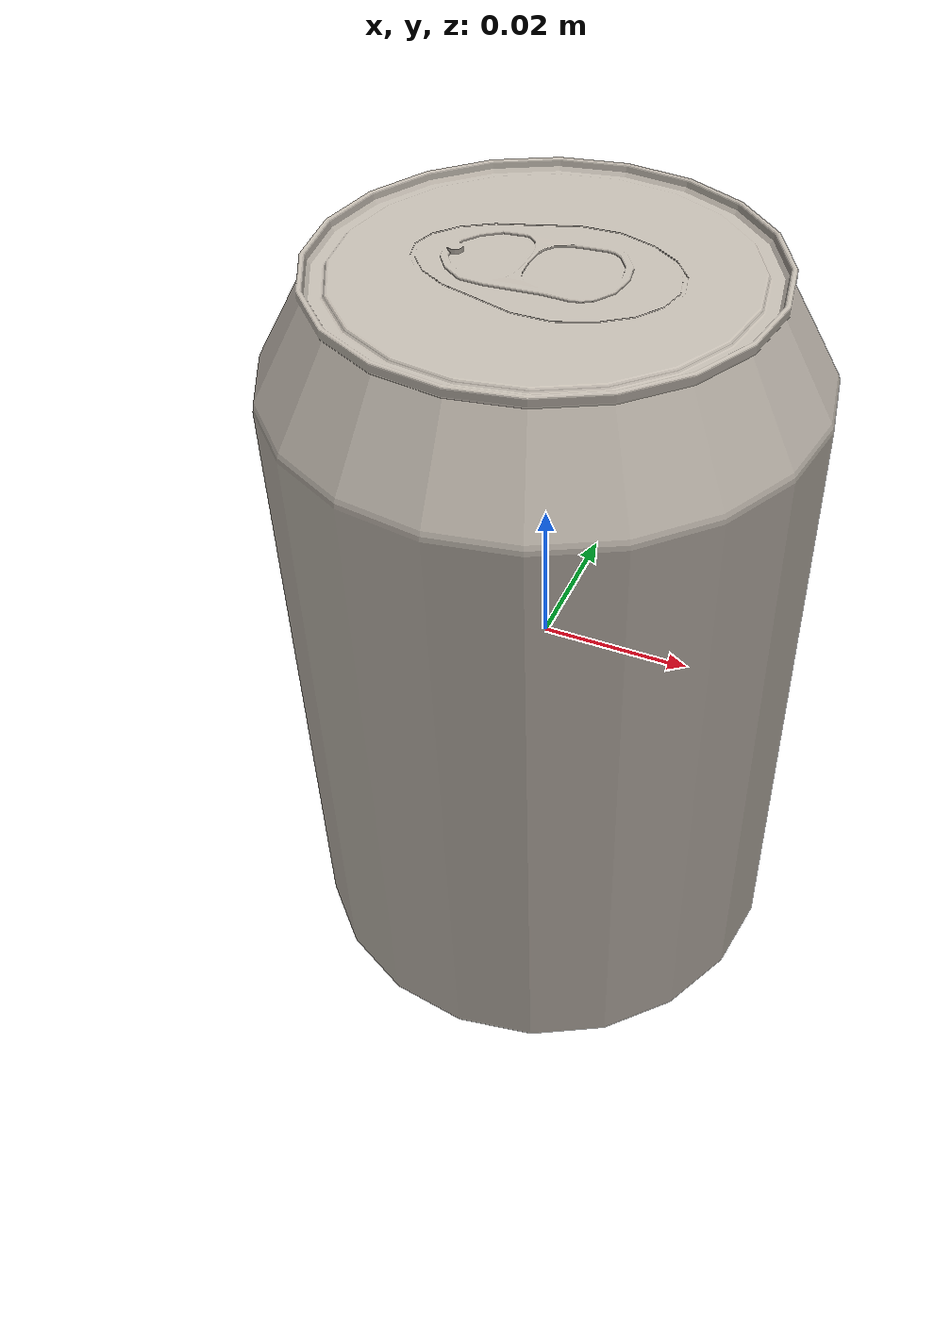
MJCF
<mujoco model="can_0">
  <asset>
    <mesh file="visual/model_normalized_0.obj" name="can_0_model_normalized_0_vis" scale="0.11 0.11 0.11" refquat="1.0 0.0 0.0 0.0" />
    <mesh file="collision/model_normalized_collision_22.obj" name="can_0_model_normalized_collision_22._coll" scale="0.11 0.11 0.11" refquat="1.0 0.0 0.0 0.0" />
    <mesh file="collision/model_normalized_collision_23.obj" name="can_0_model_normalized_collision_23._coll" scale="0.11 0.11 0.11" refquat="1.0 0.0 0.0 0.0" />
    <mesh file="collision/model_normalized_collision_21.obj" name="can_0_model_normalized_collision_21._coll" scale="0.11 0.11 0.11" refquat="1.0 0.0 0.0 0.0" />
    <mesh file="collision/model_normalized_collision_20.obj" name="can_0_model_normalized_collision_20._coll" scale="0.11 0.11 0.11" refquat="1.0 0.0 0.0 0.0" />
    <mesh file="collision/model_normalized_collision_24.obj" name="can_0_model_normalized_collision_24._coll" scale="0.11 0.11 0.11" refquat="1.0 0.0 0.0 0.0" />
    <mesh file="collision/model_normalized_collision_30.obj" name="can_0_model_normalized_collision_30._coll" scale="0.11 0.11 0.11" refquat="1.0 0.0 0.0 0.0" />
    <mesh file="collision/model_normalized_collision_18.obj" name="can_0_model_normalized_collision_18._coll" scale="0.11 0.11 0.11" refquat="1.0 0.0 0.0 0.0" />
    <mesh file="collision/model_normalized_collision_19.obj" name="can_0_model_normalized_collision_19._coll" scale="0.11 0.11 0.11" refquat="1.0 0.0 0.0 0.0" />
    <mesh file="collision/model_normalized_collision_31.obj" name="can_0_model_normalized_collision_31._coll" scale="0.11 0.11 0.11" refquat="1.0 0.0 0.0 0.0" />
    <mesh file="collision/model_normalized_collision_25.obj" name="can_0_model_normalized_collision_25._coll" scale="0.11 0.11 0.11" refquat="1.0 0.0 0.0 0.0" />
    <mesh file="collision/model_normalized_collision_27.obj" name="can_0_model_normalized_collision_27._coll" scale="0.11 0.11 0.11" refquat="1.0 0.0 0.0 0.0" />
    <mesh file="collision/model_normalized_collision_26.obj" name="can_0_model_normalized_collision_26._coll" scale="0.11 0.11 0.11" refquat="1.0 0.0 0.0 0.0" />
    <mesh file="collision/model_normalized_collision_9.obj" name="can_0_model_normalized_collision_9._coll" scale="0.11 0.11 0.11" refquat="1.0 0.0 0.0 0.0" />
    <mesh file="collision/model_normalized_collision_8.obj" name="can_0_model_normalized_collision_8._coll" scale="0.11 0.11 0.11" refquat="1.0 0.0 0.0 0.0" />
    <mesh file="collision/model_normalized_collision_6.obj" name="can_0_model_normalized_collision_6._coll" scale="0.11 0.11 0.11" refquat="1.0 0.0 0.0 0.0" />
    <mesh file="collision/model_normalized_collision_7.obj" name="can_0_model_normalized_collision_7._coll" scale="0.11 0.11 0.11" refquat="1.0 0.0 0.0 0.0" />
    <mesh file="collision/model_normalized_collision_5.obj" name="can_0_model_normalized_collision_5._coll" scale="0.11 0.11 0.11" refquat="1.0 0.0 0.0 0.0" />
    <mesh file="collision/model_normalized_collision_4.obj" name="can_0_model_normalized_collision_4._coll" scale="0.11 0.11 0.11" refquat="1.0 0.0 0.0 0.0" />
    <mesh file="collision/model_normalized_collision_0.obj" name="can_0_model_normalized_collision_0._coll" scale="0.11 0.11 0.11" refquat="1.0 0.0 0.0 0.0" />
    <mesh file="collision/model_normalized_collision_1.obj" name="can_0_model_normalized_collision_1._coll" scale="0.11 0.11 0.11" refquat="1.0 0.0 0.0 0.0" />
    <mesh file="collision/model_normalized_collision_3.obj" name="can_0_model_normalized_collision_3._coll" scale="0.11 0.11 0.11" refquat="1.0 0.0 0.0 0.0" />
    <mesh file="collision/model_normalized_collision_2.obj" name="can_0_model_normalized_collision_2._coll" scale="0.11 0.11 0.11" refquat="1.0 0.0 0.0 0.0" />
    <mesh file="collision/model_normalized_collision_17.obj" name="can_0_model_normalized_collision_17._coll" scale="0.11 0.11 0.11" refquat="1.0 0.0 0.0 0.0" />
    <mesh file="collision/model_normalized_collision_16.obj" name="can_0_model_normalized_collision_16._coll" scale="0.11 0.11 0.11" refquat="1.0 0.0 0.0 0.0" />
    <mesh file="collision/model_normalized_collision_28.obj" name="can_0_model_normalized_collision_28._coll" scale="0.11 0.11 0.11" refquat="1.0 0.0 0.0 0.0" />
    <mesh file="collision/model_normalized_collision_14.obj" name="can_0_model_normalized_collision_14._coll" scale="0.11 0.11 0.11" refquat="1.0 0.0 0.0 0.0" />
    <mesh file="collision/model_normalized_collision_15.obj" name="can_0_model_normalized_collision_15._coll" scale="0.11 0.11 0.11" refquat="1.0 0.0 0.0 0.0" />
    <mesh file="collision/model_normalized_collision_29.obj" name="can_0_model_normalized_collision_29._coll" scale="0.11 0.11 0.11" refquat="1.0 0.0 0.0 0.0" />
    <mesh file="collision/model_normalized_collision_11.obj" name="can_0_model_normalized_collision_11._coll" scale="0.11 0.11 0.11" refquat="1.0 0.0 0.0 0.0" />
    <mesh file="collision/model_normalized_collision_10.obj" name="can_0_model_normalized_collision_10._coll" scale="0.11 0.11 0.11" refquat="1.0 0.0 0.0 0.0" />
    <mesh file="collision/model_normalized_collision_12.obj" name="can_0_model_normalized_collision_12._coll" scale="0.11 0.11 0.11" refquat="1.0 0.0 0.0 0.0" />
    <mesh file="collision/model_normalized_collision_13.obj" name="can_0_model_normalized_collision_13._coll" scale="0.11 0.11 0.11" refquat="1.0 0.0 0.0 0.0" />
    <texture type="2d" name="can_0_image0" file="visual/image0.png" />
    <material name="can_0_Cola" texture="can_0_image0" specular="0.5" shininess="0.038399988999999995" />
  </asset>
  <worldbody>
    <body>
      <joint name="can_0_object_joint" type="free" damping="1." /><body name="can_0_object">
        <geom solimp="0.998 0.998 0.001" solref="0.001 1" density="300" friction="0.95 0.3 0.1" type="mesh" mesh="can_0_model_normalized_0_vis" conaffinity="0" contype="0" group="1" material="can_0_Cola" />
        <geom solimp="0.998 0.998 0.001" solref="0.001 1" density="300" friction="0.95 0.3 0.1" type="mesh" mesh="can_0_model_normalized_collision_22._coll" group="0" rgba="0.8 0.8 0.8 0.0" />
        <geom solimp="0.998 0.998 0.001" solref="0.001 1" density="300" friction="0.95 0.3 0.1" type="mesh" mesh="can_0_model_normalized_collision_23._coll" group="0" rgba="0.8 0.8 0.8 0.0" />
        <geom solimp="0.998 0.998 0.001" solref="0.001 1" density="300" friction="0.95 0.3 0.1" type="mesh" mesh="can_0_model_normalized_collision_21._coll" group="0" rgba="0.8 0.8 0.8 0.0" />
        <geom solimp="0.998 0.998 0.001" solref="0.001 1" density="300" friction="0.95 0.3 0.1" type="mesh" mesh="can_0_model_normalized_collision_20._coll" group="0" rgba="0.8 0.8 0.8 0.0" />
        <geom solimp="0.998 0.998 0.001" solref="0.001 1" density="300" friction="0.95 0.3 0.1" type="mesh" mesh="can_0_model_normalized_collision_24._coll" group="0" rgba="0.8 0.8 0.8 0.0" />
        <geom solimp="0.998 0.998 0.001" solref="0.001 1" density="300" friction="0.95 0.3 0.1" type="mesh" mesh="can_0_model_normalized_collision_30._coll" group="0" rgba="0.8 0.8 0.8 0.0" />
        <geom solimp="0.998 0.998 0.001" solref="0.001 1" density="300" friction="0.95 0.3 0.1" type="mesh" mesh="can_0_model_normalized_collision_18._coll" group="0" rgba="0.8 0.8 0.8 0.0" />
        <geom solimp="0.998 0.998 0.001" solref="0.001 1" density="300" friction="0.95 0.3 0.1" type="mesh" mesh="can_0_model_normalized_collision_19._coll" group="0" rgba="0.8 0.8 0.8 0.0" />
        <geom solimp="0.998 0.998 0.001" solref="0.001 1" density="300" friction="0.95 0.3 0.1" type="mesh" mesh="can_0_model_normalized_collision_31._coll" group="0" rgba="0.8 0.8 0.8 0.0" />
        <geom solimp="0.998 0.998 0.001" solref="0.001 1" density="300" friction="0.95 0.3 0.1" type="mesh" mesh="can_0_model_normalized_collision_25._coll" group="0" rgba="0.8 0.8 0.8 0.0" />
        <geom solimp="0.998 0.998 0.001" solref="0.001 1" density="300" friction="0.95 0.3 0.1" type="mesh" mesh="can_0_model_normalized_collision_27._coll" group="0" rgba="0.8 0.8 0.8 0.0" />
        <geom solimp="0.998 0.998 0.001" solref="0.001 1" density="300" friction="0.95 0.3 0.1" type="mesh" mesh="can_0_model_normalized_collision_26._coll" group="0" rgba="0.8 0.8 0.8 0.0" />
        <geom solimp="0.998 0.998 0.001" solref="0.001 1" density="300" friction="0.95 0.3 0.1" type="mesh" mesh="can_0_model_normalized_collision_9._coll" group="0" rgba="0.8 0.8 0.8 0.0" />
        <geom solimp="0.998 0.998 0.001" solref="0.001 1" density="300" friction="0.95 0.3 0.1" type="mesh" mesh="can_0_model_normalized_collision_8._coll" group="0" rgba="0.8 0.8 0.8 0.0" />
        <geom solimp="0.998 0.998 0.001" solref="0.001 1" density="300" friction="0.95 0.3 0.1" type="mesh" mesh="can_0_model_normalized_collision_6._coll" group="0" rgba="0.8 0.8 0.8 0.0" />
        <geom solimp="0.998 0.998 0.001" solref="0.001 1" density="300" friction="0.95 0.3 0.1" type="mesh" mesh="can_0_model_normalized_collision_7._coll" group="0" rgba="0.8 0.8 0.8 0.0" />
        <geom solimp="0.998 0.998 0.001" solref="0.001 1" density="300" friction="0.95 0.3 0.1" type="mesh" mesh="can_0_model_normalized_collision_5._coll" group="0" rgba="0.8 0.8 0.8 0.0" />
        <geom solimp="0.998 0.998 0.001" solref="0.001 1" density="300" friction="0.95 0.3 0.1" type="mesh" mesh="can_0_model_normalized_collision_4._coll" group="0" rgba="0.8 0.8 0.8 0.0" />
        <geom solimp="0.998 0.998 0.001" solref="0.001 1" density="300" friction="0.95 0.3 0.1" type="mesh" mesh="can_0_model_normalized_collision_0._coll" group="0" rgba="0.8 0.8 0.8 0.0" />
        <geom solimp="0.998 0.998 0.001" solref="0.001 1" density="300" friction="0.95 0.3 0.1" type="mesh" mesh="can_0_model_normalized_collision_1._coll" group="0" rgba="0.8 0.8 0.8 0.0" />
        <geom solimp="0.998 0.998 0.001" solref="0.001 1" density="300" friction="0.95 0.3 0.1" type="mesh" mesh="can_0_model_normalized_collision_3._coll" group="0" rgba="0.8 0.8 0.8 0.0" />
        <geom solimp="0.998 0.998 0.001" solref="0.001 1" density="300" friction="0.95 0.3 0.1" type="mesh" mesh="can_0_model_normalized_collision_2._coll" group="0" rgba="0.8 0.8 0.8 0.0" />
        <geom solimp="0.998 0.998 0.001" solref="0.001 1" density="300" friction="0.95 0.3 0.1" type="mesh" mesh="can_0_model_normalized_collision_17._coll" group="0" rgba="0.8 0.8 0.8 0.0" />
        <geom solimp="0.998 0.998 0.001" solref="0.001 1" density="300" friction="0.95 0.3 0.1" type="mesh" mesh="can_0_model_normalized_collision_16._coll" group="0" rgba="0.8 0.8 0.8 0.0" />
        <geom solimp="0.998 0.998 0.001" solref="0.001 1" density="300" friction="0.95 0.3 0.1" type="mesh" mesh="can_0_model_normalized_collision_28._coll" group="0" rgba="0.8 0.8 0.8 0.0" />
        <geom solimp="0.998 0.998 0.001" solref="0.001 1" density="300" friction="0.95 0.3 0.1" type="mesh" mesh="can_0_model_normalized_collision_14._coll" group="0" rgba="0.8 0.8 0.8 0.0" />
        <geom solimp="0.998 0.998 0.001" solref="0.001 1" density="300" friction="0.95 0.3 0.1" type="mesh" mesh="can_0_model_normalized_collision_15._coll" group="0" rgba="0.8 0.8 0.8 0.0" />
        <geom solimp="0.998 0.998 0.001" solref="0.001 1" density="300" friction="0.95 0.3 0.1" type="mesh" mesh="can_0_model_normalized_collision_29._coll" group="0" rgba="0.8 0.8 0.8 0.0" />
        <geom solimp="0.998 0.998 0.001" solref="0.001 1" density="300" friction="0.95 0.3 0.1" type="mesh" mesh="can_0_model_normalized_collision_11._coll" group="0" rgba="0.8 0.8 0.8 0.0" />
        <geom solimp="0.998 0.998 0.001" solref="0.001 1" density="300" friction="0.95 0.3 0.1" type="mesh" mesh="can_0_model_normalized_collision_10._coll" group="0" rgba="0.8 0.8 0.8 0.0" />
        <geom solimp="0.998 0.998 0.001" solref="0.001 1" density="300" friction="0.95 0.3 0.1" type="mesh" mesh="can_0_model_normalized_collision_12._coll" group="0" rgba="0.8 0.8 0.8 0.0" />
        <geom solimp="0.998 0.998 0.001" solref="0.001 1" density="300" friction="0.95 0.3 0.1" type="mesh" mesh="can_0_model_normalized_collision_13._coll" group="0" rgba="0.8 0.8 0.8 0.0" />
      </body>

    </body>
  </worldbody>
</mujoco>
